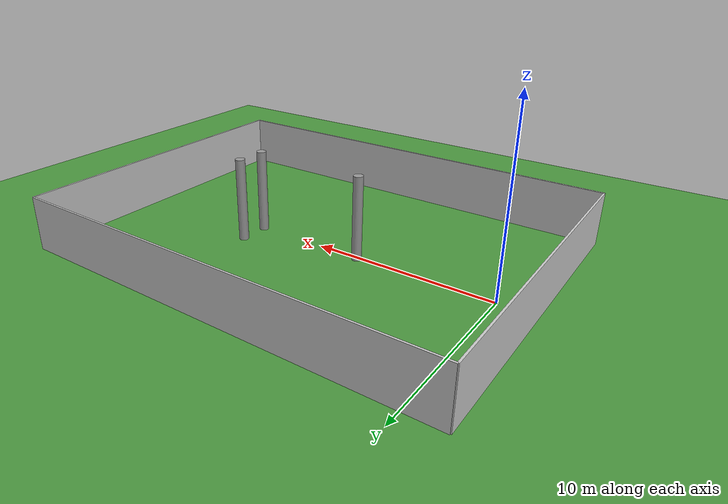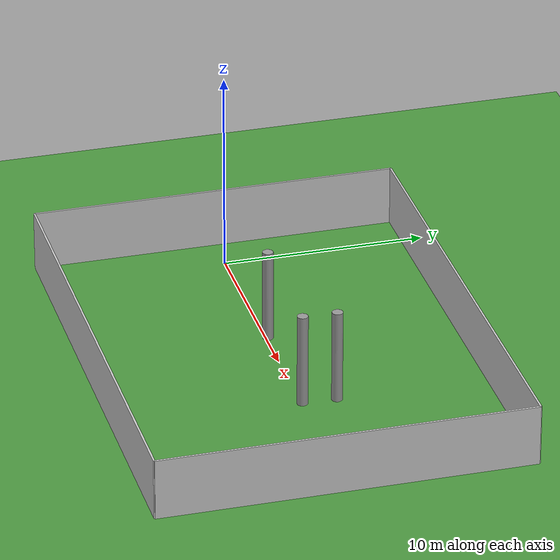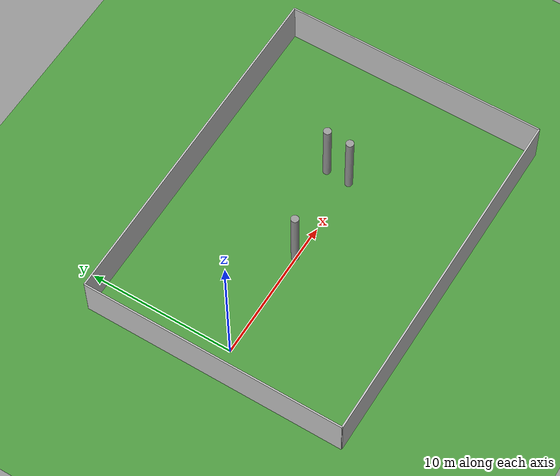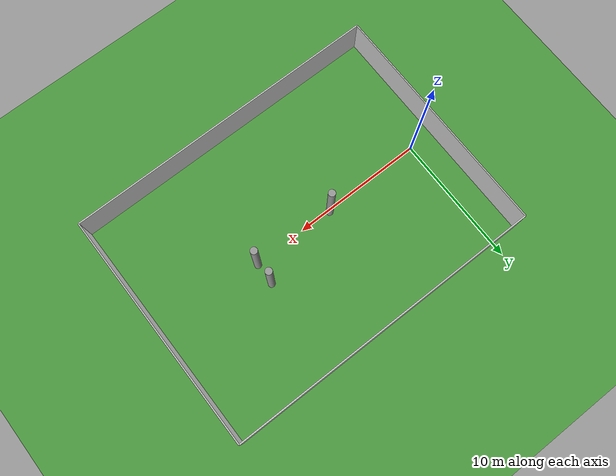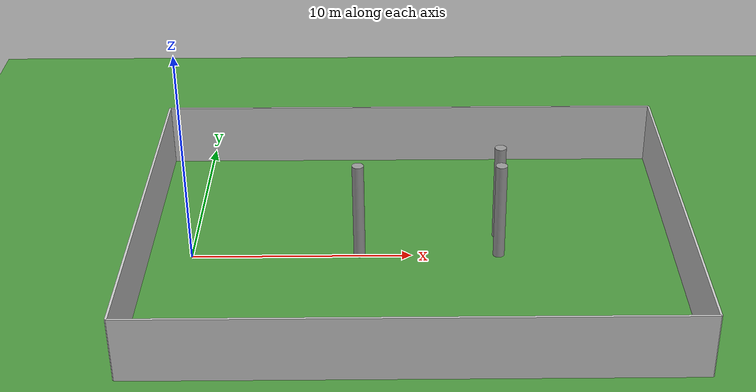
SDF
<sdf version="1.7">
 <world name="grass_enclosed_world">
  <light name="sun" type="directional">
   <pose>0 0 10 0 -0 0</pose>
   <diffuse>0.8 0.8 0.8 1</diffuse>
   <specular>0.2 0.2 0.2 1</specular>
   <attenuation>
    <range>1000</range>
    <constant>0.9</constant>
    <linear>0.01</linear>
    <quadratic>0.001</quadratic>
   </attenuation>
   <direction>-0.5 0.1 -0.9</direction>
   <spot><inner_angle>0</inner_angle><outer_angle>0</outer_angle><falloff>0</falloff></spot>
  </light>
  <model name="ground_plane">
   <static>1</static>
   <link name="link">
    <collision name="collision">
     <geometry><plane><normal>0 0 1</normal><size>50 50</size></plane></geometry>
     <surface><friction><ode><mu>100</mu><mu2>50</mu2></ode></friction></surface>
    </collision>
    <visual name="visual">
     <geometry><plane><normal>0 0 1</normal><size>50 50</size></plane></geometry>
     <material>
      <script><uri>file://media/materials/scripts/gazebo.material</uri><name>Gazebo/Grass</name></script>
     </material>
    </visual>
   </link>
  </model>
  <model name="wall_x_positive">
   <static>1</static>
   <pose>10 9 1.5 0 -0 0</pose>
   <link name="link">
    <collision name="collision"><geometry><box><size>24 0.1 3</size></box></geometry></collision>
    <visual name="visual">
     <geometry><box><size>24 0.1 3</size></box></geometry>
     <material><ambient>0.8 0.8 0.8 1</ambient></material>
    </visual>
   </link>
  </model>
  <model name="wall_x_negative">
   <static>1</static>
   <pose>10 -9 1.5 0 -0 0</pose>
   <link name="link">
    <collision name="collision"><geometry><box><size>24 0.1 3</size></box></geometry></collision>
    <visual name="visual">
     <geometry><box><size>24 0.1 3</size></box></geometry>
     <material><ambient>0.8 0.8 0.8 1</ambient></material>
    </visual>
   </link>
  </model>
  <model name="wall_y_positive">
   <static>1</static>
   <pose>22 0 1.5 0 -0 0</pose>
   <link name="link">
    <collision name="collision"><geometry><box><size>0.1 18 3</size></box></geometry></collision>
    <visual name="visual">
     <geometry><box><size>0.1 18 3</size></box></geometry>
     <material><ambient>0.8 0.8 0.8 1</ambient></material>
    </visual>
   </link>
  </model>
  <model name="wall_y_negative">
   <static>1</static>
   <pose>-2 0 1.5 0 -0 0</pose>
   <link name="link">
    <collision name="collision"><geometry><box><size>0.1 18 3</size></box></geometry></collision>
    <visual name="visual">
     <geometry><box><size>0.1 18 3</size></box></geometry>
     <material><ambient>0.8 0.8 0.8 1</ambient></material>
    </visual>
   </link>
  </model>
  <physics type="ode">
   <max_step_size>0.001</max_step_size>
   <real_time_factor>1</real_time_factor>
   <real_time_update_rate>1000</real_time_update_rate>
   <gravity>0 0 -9.8</gravity>
  </physics>
  <gravity>0 0 -9.8</gravity>
  <magnetic_field>6e-06 2.3e-05 -4.2e-05</magnetic_field>
  <atmosphere type="adiabatic"/>
  <scene><ambient>0.4 0.4 0.4 1</ambient><background>0.7 0.7 0.7 1</background><shadows>1</shadows></scene>
  <spherical_coordinates>
   <surface_model>EARTH_WGS84</surface_model>
   <latitude_deg>0</latitude_deg>
   <longitude_deg>0</longitude_deg>
   <elevation>0</elevation>
   <heading_deg>0</heading_deg>
  </spherical_coordinates>
  <model name="cylinder_tree">
   <link name="link_0">
    <inertial>
     <mass>1.28436</mass>
     <inertia>
      <ixx>2.33029</ixx>
      <ixy>0</ixy>
      <ixz>0</ixz>
      <iyy>2.33029</iyy>
      <iyz>0</iyz>
      <izz>0.0444012</izz>
     </inertia>
    </inertial>
    <pose>-1e-06 3e-06 0 0 -0 0</pose>
    <visual name="visual">
     <geometry><cylinder><radius>0.262948</radius><length>4.64381</length></cylinder></geometry>
     <material>
      <lighting>1</lighting>
      <script><uri>file://media/materials/scripts/gazebo.material</uri><name>Gazebo/Grey</name></script>
      <shader type="pixel"/>
     </material>
    </visual>
    <collision name="collision">
     <geometry><cylinder><radius>0.262948</radius><length>4.64381</length></cylinder></geometry>
     <surface>
      <friction>
       <ode><mu>1</mu><mu2>1</mu2><fdir1>0 0 0</fdir1><slip1>0</slip1><slip2>0</slip2></ode>
       <torsional>
        <coefficient>1</coefficient>
        <patch_radius>0</patch_radius>
        <surface_radius>0</surface_radius>
        <use_patch_radius>1</use_patch_radius>
        <ode><slip>0</slip></ode>
       </torsional>
      </friction>
      <bounce><restitution_coefficient>0</restitution_coefficient><threshold>1e+06</threshold></bounce>
      <contact>
       <collide_without_contact>0</collide_without_contact>
       <collide_without_contact_bitmask>1</collide_without_contact_bitmask>
       <collide_bitmask>1</collide_bitmask>
       <ode>
        <soft_cfm>0</soft_cfm>
        <soft_erp>0.2</soft_erp>
        <kp>1e+13</kp>
        <kd>1</kd>
        <max_vel>0.01</max_vel>
        <min_depth>0</min_depth>
       </ode>
       <bullet>
        <split_impulse>1</split_impulse>
        <split_impulse_penetration_threshold>-0.01</split_impulse_penetration_threshold>
        <soft_cfm>0</soft_cfm>
        <soft_erp>0.2</soft_erp>
        <kp>1e+13</kp>
        <kd>1</kd>
       </bullet>
      </contact>
     </surface>
    </collision>
   </link>
   <static>0</static>
   <pose>7.62409 0.115759 2.3219 0 -0 -1.3e-05</pose>
  </model>
  <model name="cylinder_tree_0">
   <link name="link_0">
    <inertial>
     <mass>1.28436</mass>
     <inertia>
      <ixx>2.33029</ixx>
      <ixy>0</ixy>
      <ixz>0</ixz>
      <iyy>2.33029</iyy>
      <iyz>0</iyz>
      <izz>0.0444012</izz>
     </inertia>
    </inertial>
    <pose>-1e-06 3e-06 0 0 -0 0</pose>
    <visual name="visual">
     <geometry><cylinder><radius>0.262948</radius><length>4.64381</length></cylinder></geometry>
     <material>
      <lighting>1</lighting>
      <script><uri>file://media/materials/scripts/gazebo.material</uri><name>Gazebo/Grey</name></script>
      <shader type="pixel"/>
     </material>
    </visual>
    <collision name="collision">
     <geometry><cylinder><radius>0.262948</radius><length>4.64381</length></cylinder></geometry>
     <surface>
      <friction>
       <ode><mu>1</mu><mu2>1</mu2><fdir1>0 0 0</fdir1><slip1>0</slip1><slip2>0</slip2></ode>
       <torsional>
        <coefficient>1</coefficient>
        <patch_radius>0</patch_radius>
        <surface_radius>0</surface_radius>
        <use_patch_radius>1</use_patch_radius>
        <ode><slip>0</slip></ode>
       </torsional>
      </friction>
      <bounce><restitution_coefficient>0</restitution_coefficient><threshold>1e+06</threshold></bounce>
      <contact>
       <collide_without_contact>0</collide_without_contact>
       <collide_without_contact_bitmask>1</collide_without_contact_bitmask>
       <collide_bitmask>1</collide_bitmask>
       <ode>
        <soft_cfm>0</soft_cfm>
        <soft_erp>0.2</soft_erp>
        <kp>1e+13</kp>
        <kd>1</kd>
        <max_vel>0.01</max_vel>
        <min_depth>0</min_depth>
       </ode>
       <bullet>
        <split_impulse>1</split_impulse>
        <split_impulse_penetration_threshold>-0.01</split_impulse_penetration_threshold>
        <soft_cfm>0</soft_cfm>
        <soft_erp>0.2</soft_erp>
        <kp>1e+13</kp>
        <kd>1</kd>
       </bullet>
      </contact>
     </surface>
    </collision>
   </link>
   <static>0</static>
   <pose>13.9761 0.054623 2.3219 0 0 -1.3e-05</pose>
  </model>
  <model name="cylinder_tree_1">
   <link name="link_0">
    <inertial>
     <mass>1.28436</mass>
     <inertia>
      <ixx>2.33029</ixx>
      <ixy>0</ixy>
      <ixz>0</ixz>
      <iyy>2.33029</iyy>
      <iyz>0</iyz>
      <izz>0.0444012</izz>
     </inertia>
    </inertial>
    <pose>-1e-06 3e-06 0 0 -0 0</pose>
    <visual name="visual">
     <geometry><cylinder><radius>0.262948</radius><length>4.64381</length></cylinder></geometry>
     <material>
      <lighting>1</lighting>
      <script><uri>file://media/materials/scripts/gazebo.material</uri><name>Gazebo/Grey</name></script>
      <shader type="pixel"/>
     </material>
    </visual>
    <collision name="collision">
     <geometry><cylinder><radius>0.262948</radius><length>4.64381</length></cylinder></geometry>
     <surface>
      <friction>
       <ode><mu>1</mu><mu2>1</mu2><fdir1>0 0 0</fdir1><slip1>0</slip1><slip2>0</slip2></ode>
       <torsional>
        <coefficient>1</coefficient>
        <patch_radius>0</patch_radius>
        <surface_radius>0</surface_radius>
        <use_patch_radius>1</use_patch_radius>
        <ode><slip>0</slip></ode>
       </torsional>
      </friction>
      <bounce><restitution_coefficient>0</restitution_coefficient><threshold>1e+06</threshold></bounce>
      <contact>
       <collide_without_contact>0</collide_without_contact>
       <collide_without_contact_bitmask>1</collide_without_contact_bitmask>
       <collide_bitmask>1</collide_bitmask>
       <ode>
        <soft_cfm>0</soft_cfm>
        <soft_erp>0.2</soft_erp>
        <kp>1e+13</kp>
        <kd>1</kd>
        <max_vel>0.01</max_vel>
        <min_depth>0</min_depth>
       </ode>
       <bullet>
        <split_impulse>1</split_impulse>
        <split_impulse_penetration_threshold>-0.01</split_impulse_penetration_threshold>
        <soft_cfm>0</soft_cfm>
        <soft_erp>0.2</soft_erp>
        <kp>1e+13</kp>
        <kd>1</kd>
       </bullet>
      </contact>
     </surface>
    </collision>
   </link>
   <static>0</static>
   <pose>14.0338 1.70213 2.3219 0 -0 -1.3e-05</pose>
  </model>
 </world>
</sdf>
